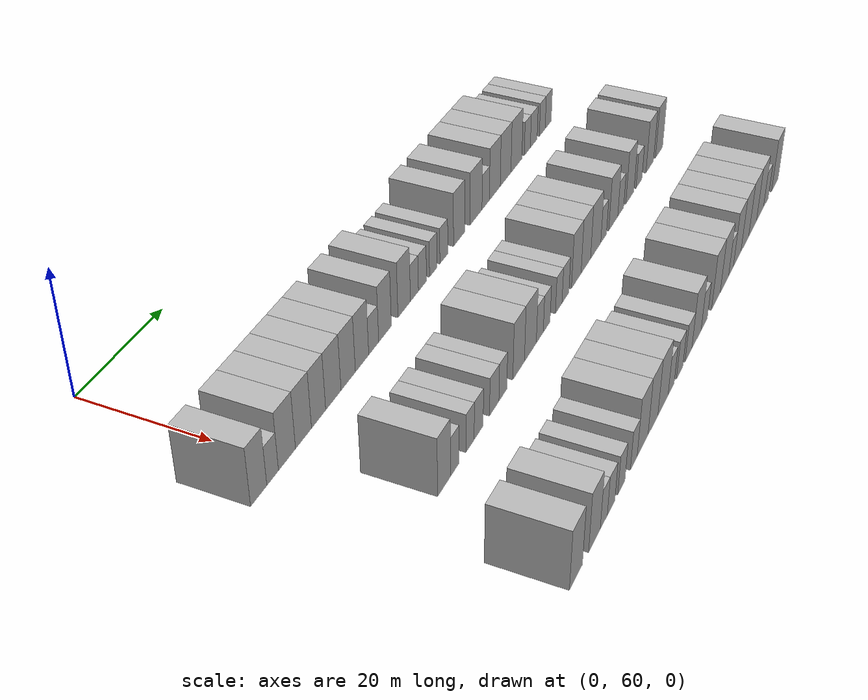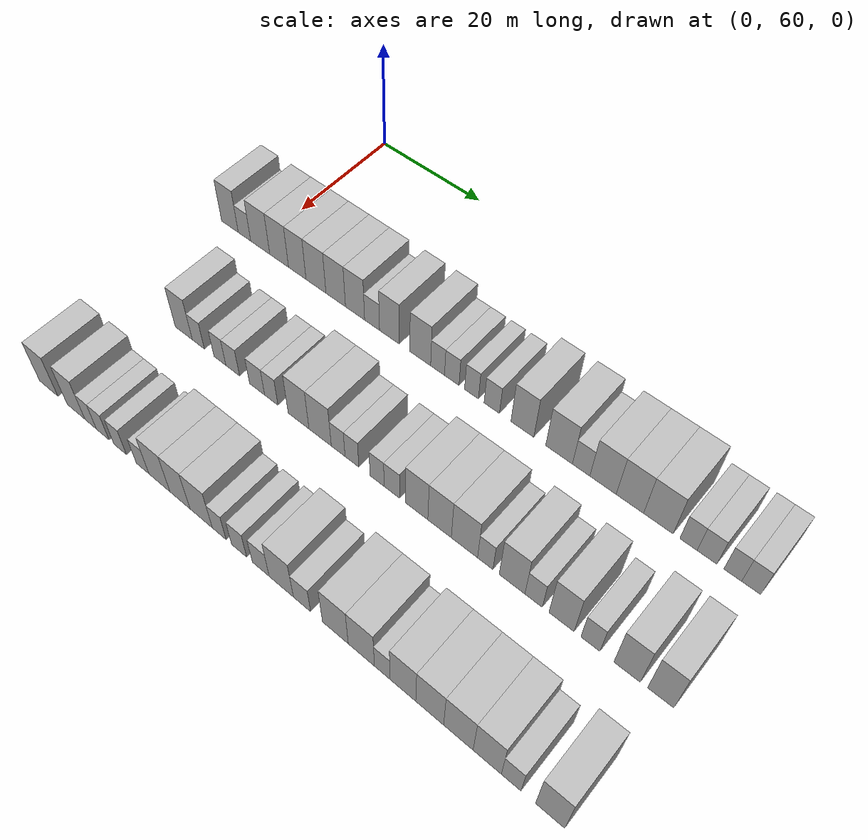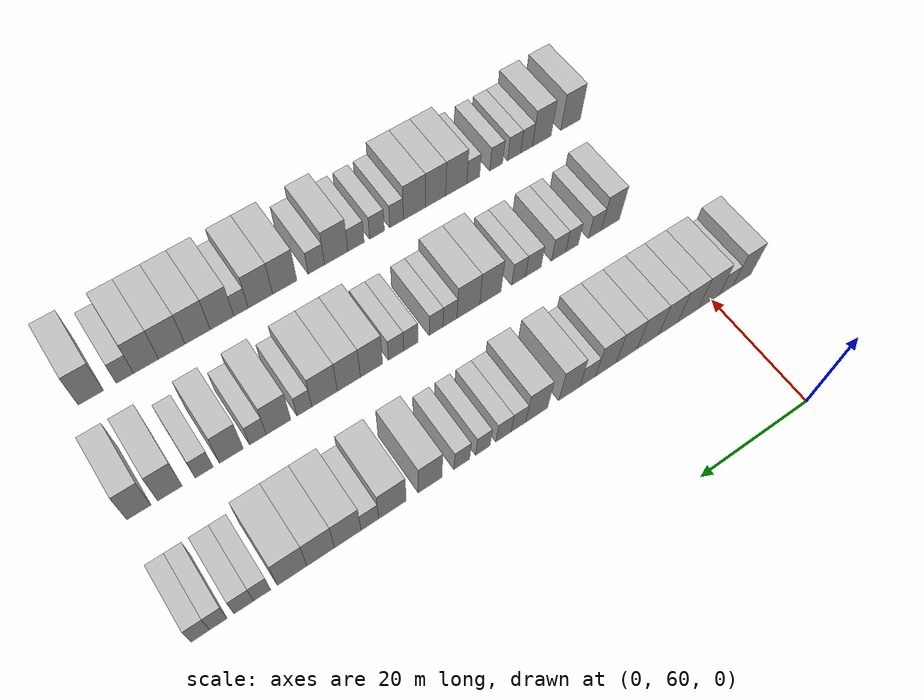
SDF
<sdf version="1.6">
 <world name="default">
  <model name="building_72">
   <static>1</static>
   <pose>25.0000 54.0609 0 0.000000 0.000000 0.000000</pose>
   <link name="link">
    <pose>0 0 4.50 0 0 0</pose>
    <collision name="collision"><geometry><box><size>10.0000 3.7414 9.0000</size></box></geometry></collision>
    <visual name="visual">
     <cast_shadows>0</cast_shadows>
     <geometry><box><size>10.0000 3.7414 9.0000</size></box></geometry>
     <material>
      <script>
       <uri>model://HANNAS_wall/materials/scripts</uri>
       <uri>model://HANNAS_wall/materials/textures</uri>
       <name>vrc/HANNAS_wall</name>
      </script>
     </material>
    </visual>
   </link>
  </model>
  <model name="building_73">
   <static>1</static>
   <pose>25.0000 57.3106 0 0.000000 0.000000 0.000000</pose>
   <link name="link">
    <pose>0 0 3.00 0 0 0</pose>
    <collision name="collision"><geometry><box><size>10.0000 2.7582 6.0000</size></box></geometry></collision>
    <visual name="visual">
     <cast_shadows>0</cast_shadows>
     <geometry><box><size>10.0000 2.7582 6.0000</size></box></geometry>
     <material>
      <script>
       <uri>model://HANNAS_wall/materials/scripts</uri>
       <uri>model://HANNAS_wall/materials/textures</uri>
       <name>vrc/HANNAS_wall</name>
      </script>
     </material>
    </visual>
   </link>
  </model>
  <model name="building_74">
   <static>1</static>
   <pose>25.0000 60.7613 0 0.000000 0.000000 0.000000</pose>
   <link name="link">
    <pose>0 0 4.50 0 0 0</pose>
    <collision name="collision"><geometry><box><size>10.0000 4.1431 9.0000</size></box></geometry></collision>
    <visual name="visual">
     <cast_shadows>0</cast_shadows>
     <geometry><box><size>10.0000 4.1431 9.0000</size></box></geometry>
     <material>
      <script>
       <uri>model://HANNAS_wall/materials/scripts</uri>
       <uri>model://HANNAS_wall/materials/textures</uri>
       <name>vrc/HANNAS_wall</name>
      </script>
     </material>
    </visual>
   </link>
  </model>
  <model name="building_75">
   <static>1</static>
   <pose>25.0000 64.8442 0 0.000000 0.000000 0.000000</pose>
   <link name="link">
    <pose>0 0 4.50 0 0 0</pose>
    <collision name="collision"><geometry><box><size>10.0000 4.0227 9.0000</size></box></geometry></collision>
    <visual name="visual">
     <cast_shadows>0</cast_shadows>
     <geometry><box><size>10.0000 4.0227 9.0000</size></box></geometry>
     <material>
      <script>
       <uri>model://HANNAS_wall/materials/scripts</uri>
       <uri>model://HANNAS_wall/materials/textures</uri>
       <name>vrc/HANNAS_wall</name>
      </script>
     </material>
    </visual>
   </link>
  </model>
  <model name="building_76">
   <static>1</static>
   <pose>25.0000 68.6982 0 0.000000 0.000000 0.000000</pose>
   <link name="link">
    <pose>0 0 4.50 0 0 0</pose>
    <collision name="collision"><geometry><box><size>10.0000 3.6854 9.0000</size></box></geometry></collision>
    <visual name="visual">
     <cast_shadows>0</cast_shadows>
     <geometry><box><size>10.0000 3.6854 9.0000</size></box></geometry>
     <material>
      <script>
       <uri>model://HANNAS_wall/materials/scripts</uri>
       <uri>model://HANNAS_wall/materials/textures</uri>
       <name>vrc/HANNAS_wall</name>
      </script>
     </material>
    </visual>
   </link>
  </model>
  <model name="building_77">
   <static>1</static>
   <pose>25.0000 72.5969 0 0.000000 0.000000 0.000000</pose>
   <link name="link">
    <pose>0 0 4.50 0 0 0</pose>
    <collision name="collision"><geometry><box><size>10.0000 4.1120 9.0000</size></box></geometry></collision>
    <visual name="visual">
     <cast_shadows>0</cast_shadows>
     <geometry><box><size>10.0000 4.1120 9.0000</size></box></geometry>
     <material>
      <script>
       <uri>model://HANNAS_wall/materials/scripts</uri>
       <uri>model://HANNAS_wall/materials/textures</uri>
       <name>vrc/HANNAS_wall</name>
      </script>
     </material>
    </visual>
   </link>
  </model>
  <model name="building_78">
   <static>1</static>
   <pose>25.0000 76.6334 0 0.000000 0.000000 0.000000</pose>
   <link name="link">
    <pose>0 0 4.50 0 0 0</pose>
    <collision name="collision"><geometry><box><size>10.0000 3.9609 9.0000</size></box></geometry></collision>
    <visual name="visual">
     <cast_shadows>0</cast_shadows>
     <geometry><box><size>10.0000 3.9609 9.0000</size></box></geometry>
     <material>
      <script>
       <uri>model://HANNAS_wall/materials/scripts</uri>
       <uri>model://HANNAS_wall/materials/textures</uri>
       <name>vrc/HANNAS_wall</name>
      </script>
     </material>
    </visual>
   </link>
  </model>
  <model name="building_79">
   <static>1</static>
   <pose>25.0000 80.5149 0 0.000000 0.000000 0.000000</pose>
   <link name="link">
    <pose>0 0 4.50 0 0 0</pose>
    <collision name="collision"><geometry><box><size>10.0000 3.8021 9.0000</size></box></geometry></collision>
    <visual name="visual">
     <cast_shadows>0</cast_shadows>
     <geometry><box><size>10.0000 3.8021 9.0000</size></box></geometry>
     <material>
      <script>
       <uri>model://HANNAS_wall/materials/scripts</uri>
       <uri>model://HANNAS_wall/materials/textures</uri>
       <name>vrc/HANNAS_wall</name>
      </script>
     </material>
    </visual>
   </link>
  </model>
  <model name="building_80">
   <static>1</static>
   <pose>25.0000 83.8756 0 0.000000 0.000000 0.000000</pose>
   <link name="link">
    <pose>0 0 3.00 0 0 0</pose>
    <collision name="collision"><geometry><box><size>10.0000 2.9192 6.0000</size></box></geometry></collision>
    <visual name="visual">
     <cast_shadows>0</cast_shadows>
     <geometry><box><size>10.0000 2.9192 6.0000</size></box></geometry>
     <material>
      <script>
       <uri>model://HANNAS_wall/materials/scripts</uri>
       <uri>model://HANNAS_wall/materials/textures</uri>
       <name>vrc/HANNAS_wall</name>
      </script>
     </material>
    </visual>
   </link>
  </model>
  <model name="building_81">
   <static>1</static>
   <pose>25.0000 87.2364 0 0.000000 0.000000 0.000000</pose>
   <link name="link">
    <pose>0 0 4.50 0 0 0</pose>
    <collision name="collision"><geometry><box><size>10.0000 3.8025 9.0000</size></box></geometry></collision>
    <visual name="visual">
     <cast_shadows>0</cast_shadows>
     <geometry><box><size>10.0000 3.8025 9.0000</size></box></geometry>
     <material>
      <script>
       <uri>model://HANNAS_wall/materials/scripts</uri>
       <uri>model://HANNAS_wall/materials/textures</uri>
       <name>vrc/HANNAS_wall</name>
      </script>
     </material>
    </visual>
   </link>
  </model>
  <model name="building_82">
   <static>1</static>
   <pose>25.0000 93.0876 0 0.000000 0.000000 0.000000</pose>
   <link name="link">
    <pose>0 0 4.50 0 0 0</pose>
    <collision name="collision"><geometry><box><size>10.0000 3.8999 9.0000</size></box></geometry></collision>
    <visual name="visual">
     <cast_shadows>0</cast_shadows>
     <geometry><box><size>10.0000 3.8999 9.0000</size></box></geometry>
     <material>
      <script>
       <uri>model://HANNAS_wall/materials/scripts</uri>
       <uri>model://HANNAS_wall/materials/textures</uri>
       <name>vrc/HANNAS_wall</name>
      </script>
     </material>
    </visual>
   </link>
  </model>
  <model name="building_83">
   <static>1</static>
   <pose>25.0000 96.3146 0 0.000000 0.000000 0.000000</pose>
   <link name="link">
    <pose>0 0 3.00 0 0 0</pose>
    <collision name="collision"><geometry><box><size>10.0000 2.5539 6.0000</size></box></geometry></collision>
    <visual name="visual">
     <cast_shadows>0</cast_shadows>
     <geometry><box><size>10.0000 2.5539 6.0000</size></box></geometry>
     <material>
      <script>
       <uri>model://HANNAS_wall/materials/scripts</uri>
       <uri>model://HANNAS_wall/materials/textures</uri>
       <name>vrc/HANNAS_wall</name>
      </script>
     </material>
    </visual>
   </link>
  </model>
  <model name="building_84">
   <static>1</static>
   <pose>25.0000 98.9100 0 0.000000 0.000000 0.000000</pose>
   <link name="link">
    <pose>0 0 3.00 0 0 0</pose>
    <collision name="collision"><geometry><box><size>10.0000 2.6369 6.0000</size></box></geometry></collision>
    <visual name="visual">
     <cast_shadows>0</cast_shadows>
     <geometry><box><size>10.0000 2.6369 6.0000</size></box></geometry>
     <material>
      <script>
       <uri>model://HANNAS_wall/materials/scripts</uri>
       <uri>model://HANNAS_wall/materials/textures</uri>
       <name>vrc/HANNAS_wall</name>
      </script>
     </material>
    </visual>
   </link>
  </model>
  <model name="building_85">
   <static>1</static>
   <pose>25.0000 102.4667 0 0.000000 0.000000 0.000000</pose>
   <link name="link">
    <pose>0 0 3.00 0 0 0</pose>
    <collision name="collision"><geometry><box><size>10.0000 2.4763 6.0000</size></box></geometry></collision>
    <visual name="visual">
     <cast_shadows>0</cast_shadows>
     <geometry><box><size>10.0000 2.4763 6.0000</size></box></geometry>
     <material>
      <script>
       <uri>model://HANNAS_wall/materials/scripts</uri>
       <uri>model://HANNAS_wall/materials/textures</uri>
       <name>vrc/HANNAS_wall</name>
      </script>
     </material>
    </visual>
   </link>
  </model>
  <model name="building_86">
   <static>1</static>
   <pose>25.0000 106.0532 0 0.000000 0.000000 0.000000</pose>
   <link name="link">
    <pose>0 0 3.00 0 0 0</pose>
    <collision name="collision"><geometry><box><size>10.0000 2.6967 6.0000</size></box></geometry></collision>
    <visual name="visual">
     <cast_shadows>0</cast_shadows>
     <geometry><box><size>10.0000 2.6967 6.0000</size></box></geometry>
     <material>
      <script>
       <uri>model://HANNAS_wall/materials/scripts</uri>
       <uri>model://HANNAS_wall/materials/textures</uri>
       <name>vrc/HANNAS_wall</name>
      </script>
     </material>
    </visual>
   </link>
  </model>
  <model name="building_87">
   <static>1</static>
   <pose>25.0000 111.3557 0 0.000000 0.000000 0.000000</pose>
   <link name="link">
    <pose>0 0 4.50 0 0 0</pose>
    <collision name="collision"><geometry><box><size>10.0000 3.9084 9.0000</size></box></geometry></collision>
    <visual name="visual">
     <cast_shadows>0</cast_shadows>
     <geometry><box><size>10.0000 3.9084 9.0000</size></box></geometry>
     <material>
      <script>
       <uri>model://HANNAS_wall/materials/scripts</uri>
       <uri>model://HANNAS_wall/materials/textures</uri>
       <name>vrc/HANNAS_wall</name>
      </script>
     </material>
    </visual>
   </link>
  </model>
  <model name="building_88">
   <static>1</static>
   <pose>25.0000 117.5248 0 0.000000 0.000000 0.000000</pose>
   <link name="link">
    <pose>0 0 4.50 0 0 0</pose>
    <collision name="collision"><geometry><box><size>10.0000 4.4297 9.0000</size></box></geometry></collision>
    <visual name="visual">
     <cast_shadows>0</cast_shadows>
     <geometry><box><size>10.0000 4.4297 9.0000</size></box></geometry>
     <material>
      <script>
       <uri>model://HANNAS_wall/materials/scripts</uri>
       <uri>model://HANNAS_wall/materials/textures</uri>
       <name>vrc/HANNAS_wall</name>
      </script>
     </material>
    </visual>
   </link>
  </model>
  <model name="building_89">
   <static>1</static>
   <pose>25.0000 121.1497 0 0.000000 0.000000 0.000000</pose>
   <link name="link">
    <pose>0 0 3.00 0 0 0</pose>
    <collision name="collision"><geometry><box><size>10.0000 2.8201 6.0000</size></box></geometry></collision>
    <visual name="visual">
     <cast_shadows>0</cast_shadows>
     <geometry><box><size>10.0000 2.8201 6.0000</size></box></geometry>
     <material>
      <script>
       <uri>model://HANNAS_wall/materials/scripts</uri>
       <uri>model://HANNAS_wall/materials/textures</uri>
       <name>vrc/HANNAS_wall</name>
      </script>
     </material>
    </visual>
   </link>
  </model>
  <model name="building_90">
   <static>1</static>
   <pose>25.0000 124.6614 0 0.000000 0.000000 0.000000</pose>
   <link name="link">
    <pose>0 0 4.50 0 0 0</pose>
    <collision name="collision"><geometry><box><size>10.0000 4.2033 9.0000</size></box></geometry></collision>
    <visual name="visual">
     <cast_shadows>0</cast_shadows>
     <geometry><box><size>10.0000 4.2033 9.0000</size></box></geometry>
     <material>
      <script>
       <uri>model://HANNAS_wall/materials/scripts</uri>
       <uri>model://HANNAS_wall/materials/textures</uri>
       <name>vrc/HANNAS_wall</name>
      </script>
     </material>
    </visual>
   </link>
  </model>
  <model name="building_91">
   <static>1</static>
   <pose>25.0000 128.8981 0 0.000000 0.000000 0.000000</pose>
   <link name="link">
    <pose>0 0 4.50 0 0 0</pose>
    <collision name="collision"><geometry><box><size>10.0000 4.2702 9.0000</size></box></geometry></collision>
    <visual name="visual">
     <cast_shadows>0</cast_shadows>
     <geometry><box><size>10.0000 4.2702 9.0000</size></box></geometry>
     <material>
      <script>
       <uri>model://HANNAS_wall/materials/scripts</uri>
       <uri>model://HANNAS_wall/materials/textures</uri>
       <name>vrc/HANNAS_wall</name>
      </script>
     </material>
    </visual>
   </link>
  </model>
  <model name="building_92">
   <static>1</static>
   <pose>25.0000 133.2828 0 0.000000 0.000000 0.000000</pose>
   <link name="link">
    <pose>0 0 4.50 0 0 0</pose>
    <collision name="collision"><geometry><box><size>10.0000 4.4991 9.0000</size></box></geometry></collision>
    <visual name="visual">
     <cast_shadows>0</cast_shadows>
     <geometry><box><size>10.0000 4.4991 9.0000</size></box></geometry>
     <material>
      <script>
       <uri>model://HANNAS_wall/materials/scripts</uri>
       <uri>model://HANNAS_wall/materials/textures</uri>
       <name>vrc/HANNAS_wall</name>
      </script>
     </material>
    </visual>
   </link>
  </model>
  <model name="building_93">
   <static>1</static>
   <pose>25.0000 137.8126 0 0.000000 0.000000 0.000000</pose>
   <link name="link">
    <pose>0 0 3.00 0 0 0</pose>
    <collision name="collision"><geometry><box><size>10.0000 2.5606 6.0000</size></box></geometry></collision>
    <visual name="visual">
     <cast_shadows>0</cast_shadows>
     <geometry><box><size>10.0000 2.5606 6.0000</size></box></geometry>
     <material>
      <script>
       <uri>model://HANNAS_wall/materials/scripts</uri>
       <uri>model://HANNAS_wall/materials/textures</uri>
       <name>vrc/HANNAS_wall</name>
      </script>
     </material>
    </visual>
   </link>
  </model>
  <model name="building_94">
   <static>1</static>
   <pose>25.0000 140.5441 0 0.000000 0.000000 0.000000</pose>
   <link name="link">
    <pose>0 0 3.00 0 0 0</pose>
    <collision name="collision"><geometry><box><size>10.0000 2.9024 6.0000</size></box></geometry></collision>
    <visual name="visual">
     <cast_shadows>0</cast_shadows>
     <geometry><box><size>10.0000 2.9024 6.0000</size></box></geometry>
     <material>
      <script>
       <uri>model://HANNAS_wall/materials/scripts</uri>
       <uri>model://HANNAS_wall/materials/textures</uri>
       <name>vrc/HANNAS_wall</name>
      </script>
     </material>
    </visual>
   </link>
  </model>
  <model name="building_95">
   <static>1</static>
   <pose>25.0000 144.2689 0 0.000000 0.000000 0.000000</pose>
   <link name="link">
    <pose>0 0 3.00 0 0 0</pose>
    <collision name="collision"><geometry><box><size>10.0000 2.5472 6.0000</size></box></geometry></collision>
    <visual name="visual">
     <cast_shadows>0</cast_shadows>
     <geometry><box><size>10.0000 2.5472 6.0000</size></box></geometry>
     <material>
      <script>
       <uri>model://HANNAS_wall/materials/scripts</uri>
       <uri>model://HANNAS_wall/materials/textures</uri>
       <name>vrc/HANNAS_wall</name>
      </script>
     </material>
    </visual>
   </link>
  </model>
  <model name="building_96">
   <static>1</static>
   <pose>25.0000 146.8952 0 0.000000 0.000000 0.000000</pose>
   <link name="link">
    <pose>0 0 3.00 0 0 0</pose>
    <collision name="collision"><geometry><box><size>10.0000 2.7054 6.0000</size></box></geometry></collision>
    <visual name="visual">
     <cast_shadows>0</cast_shadows>
     <geometry><box><size>10.0000 2.7054 6.0000</size></box></geometry>
     <material>
      <script>
       <uri>model://HANNAS_wall/materials/scripts</uri>
       <uri>model://HANNAS_wall/materials/textures</uri>
       <name>vrc/HANNAS_wall</name>
      </script>
     </material>
    </visual>
   </link>
  </model>
  <model name="building_179">
   <static>1</static>
   <pose>44.0000 64.1778 0 0.000000 0.000000 0.000000</pose>
   <link name="link">
    <pose>0 0 4.50 0 0 0</pose>
    <collision name="collision"><geometry><box><size>10.0000 3.6360 9.0000</size></box></geometry></collision>
    <visual name="visual">
     <cast_shadows>0</cast_shadows>
     <geometry><box><size>10.0000 3.6360 9.0000</size></box></geometry>
     <material>
      <script>
       <uri>model://HANNAS_wall/materials/scripts</uri>
       <uri>model://HANNAS_wall/materials/textures</uri>
       <name>vrc/HANNAS_wall</name>
      </script>
     </material>
    </visual>
   </link>
  </model>
  <model name="building_180">
   <static>1</static>
   <pose>44.0000 67.2681 0 0.000000 0.000000 0.000000</pose>
   <link name="link">
    <pose>0 0 3.00 0 0 0</pose>
    <collision name="collision"><geometry><box><size>10.0000 2.5446 6.0000</size></box></geometry></collision>
    <visual name="visual">
     <cast_shadows>0</cast_shadows>
     <geometry><box><size>10.0000 2.5446 6.0000</size></box></geometry>
     <material>
      <script>
       <uri>model://HANNAS_wall/materials/scripts</uri>
       <uri>model://HANNAS_wall/materials/textures</uri>
       <name>vrc/HANNAS_wall</name>
      </script>
     </material>
    </visual>
   </link>
  </model>
  <model name="building_181">
   <static>1</static>
   <pose>44.0000 71.7629 0 0.000000 0.000000 0.000000</pose>
   <link name="link">
    <pose>0 0 3.00 0 0 0</pose>
    <collision name="collision"><geometry><box><size>10.0000 2.4450 6.0000</size></box></geometry></collision>
    <visual name="visual">
     <cast_shadows>0</cast_shadows>
     <geometry><box><size>10.0000 2.4450 6.0000</size></box></geometry>
     <material>
      <script>
       <uri>model://HANNAS_wall/materials/scripts</uri>
       <uri>model://HANNAS_wall/materials/textures</uri>
       <name>vrc/HANNAS_wall</name>
      </script>
     </material>
    </visual>
   </link>
  </model>
  <model name="building_182">
   <static>1</static>
   <pose>44.0000 74.3741 0 0.000000 0.000000 0.000000</pose>
   <link name="link">
    <pose>0 0 3.00 0 0 0</pose>
    <collision name="collision"><geometry><box><size>10.0000 2.7774 6.0000</size></box></geometry></collision>
    <visual name="visual">
     <cast_shadows>0</cast_shadows>
     <geometry><box><size>10.0000 2.7774 6.0000</size></box></geometry>
     <material>
      <script>
       <uri>model://HANNAS_wall/materials/scripts</uri>
       <uri>model://HANNAS_wall/materials/textures</uri>
       <name>vrc/HANNAS_wall</name>
      </script>
     </material>
    </visual>
   </link>
  </model>
  <model name="building_183">
   <static>1</static>
   <pose>44.0000 79.2626 0 0.000000 0.000000 0.000000</pose>
   <link name="link">
    <pose>0 0 3.00 0 0 0</pose>
    <collision name="collision"><geometry><box><size>10.0000 2.9997 6.0000</size></box></geometry></collision>
    <visual name="visual">
     <cast_shadows>0</cast_shadows>
     <geometry><box><size>10.0000 2.9997 6.0000</size></box></geometry>
     <material>
      <script>
       <uri>model://HANNAS_wall/materials/scripts</uri>
       <uri>model://HANNAS_wall/materials/textures</uri>
       <name>vrc/HANNAS_wall</name>
      </script>
     </material>
    </visual>
   </link>
  </model>
  <model name="building_184">
   <static>1</static>
   <pose>44.0000 82.0551 0 0.000000 0.000000 0.000000</pose>
   <link name="link">
    <pose>0 0 3.00 0 0 0</pose>
    <collision name="collision"><geometry><box><size>10.0000 2.5851 6.0000</size></box></geometry></collision>
    <visual name="visual">
     <cast_shadows>0</cast_shadows>
     <geometry><box><size>10.0000 2.5851 6.0000</size></box></geometry>
     <material>
      <script>
       <uri>model://HANNAS_wall/materials/scripts</uri>
       <uri>model://HANNAS_wall/materials/textures</uri>
       <name>vrc/HANNAS_wall</name>
      </script>
     </material>
    </visual>
   </link>
  </model>
  <model name="building_185">
   <static>1</static>
   <pose>44.0000 87.3231 0 0.000000 0.000000 0.000000</pose>
   <link name="link">
    <pose>0 0 4.50 0 0 0</pose>
    <collision name="collision"><geometry><box><size>10.0000 3.9509 9.0000</size></box></geometry></collision>
    <visual name="visual">
     <cast_shadows>0</cast_shadows>
     <geometry><box><size>10.0000 3.9509 9.0000</size></box></geometry>
     <material>
      <script>
       <uri>model://HANNAS_wall/materials/scripts</uri>
       <uri>model://HANNAS_wall/materials/textures</uri>
       <name>vrc/HANNAS_wall</name>
      </script>
     </material>
    </visual>
   </link>
  </model>
  <model name="building_186">
   <static>1</static>
   <pose>44.0000 91.3824 0 0.000000 0.000000 0.000000</pose>
   <link name="link">
    <pose>0 0 4.50 0 0 0</pose>
    <collision name="collision"><geometry><box><size>10.0000 4.1678 9.0000</size></box></geometry></collision>
    <visual name="visual">
     <cast_shadows>0</cast_shadows>
     <geometry><box><size>10.0000 4.1678 9.0000</size></box></geometry>
     <material>
      <script>
       <uri>model://HANNAS_wall/materials/scripts</uri>
       <uri>model://HANNAS_wall/materials/textures</uri>
       <name>vrc/HANNAS_wall</name>
      </script>
     </material>
    </visual>
   </link>
  </model>
  <model name="building_187">
   <static>1</static>
   <pose>44.0000 94.7273 0 0.000000 0.000000 0.000000</pose>
   <link name="link">
    <pose>0 0 3.00 0 0 0</pose>
    <collision name="collision"><geometry><box><size>10.0000 2.5219 6.0000</size></box></geometry></collision>
    <visual name="visual">
     <cast_shadows>0</cast_shadows>
     <geometry><box><size>10.0000 2.5219 6.0000</size></box></geometry>
     <material>
      <script>
       <uri>model://HANNAS_wall/materials/scripts</uri>
       <uri>model://HANNAS_wall/materials/textures</uri>
       <name>vrc/HANNAS_wall</name>
      </script>
     </material>
    </visual>
   </link>
  </model>
  <model name="building_188">
   <static>1</static>
   <pose>44.0000 97.2341 0 0.000000 0.000000 0.000000</pose>
   <link name="link">
    <pose>0 0 3.00 0 0 0</pose>
    <collision name="collision"><geometry><box><size>10.0000 2.4917 6.0000</size></box></geometry></collision>
    <visual name="visual">
     <cast_shadows>0</cast_shadows>
     <geometry><box><size>10.0000 2.4917 6.0000</size></box></geometry>
     <material>
      <script>
       <uri>model://HANNAS_wall/materials/scripts</uri>
       <uri>model://HANNAS_wall/materials/textures</uri>
       <name>vrc/HANNAS_wall</name>
      </script>
     </material>
    </visual>
   </link>
  </model>
  <model name="building_189">
   <static>1</static>
   <pose>44.0000 101.7256 0 0.000000 0.000000 0.000000</pose>
   <link name="link">
    <pose>0 0 3.00 0 0 0</pose>
    <collision name="collision"><geometry><box><size>10.0000 2.4915 6.0000</size></box></geometry></collision>
    <visual name="visual">
     <cast_shadows>0</cast_shadows>
     <geometry><box><size>10.0000 2.4915 6.0000</size></box></geometry>
     <material>
      <script>
       <uri>model://HANNAS_wall/materials/scripts</uri>
       <uri>model://HANNAS_wall/materials/textures</uri>
       <name>vrc/HANNAS_wall</name>
      </script>
     </material>
    </visual>
   </link>
  </model>
  <model name="building_190">
   <static>1</static>
   <pose>44.0000 104.3107 0 0.000000 0.000000 0.000000</pose>
   <link name="link">
    <pose>0 0 3.00 0 0 0</pose>
    <collision name="collision"><geometry><box><size>10.0000 2.6787 6.0000</size></box></geometry></collision>
    <visual name="visual">
     <cast_shadows>0</cast_shadows>
     <geometry><box><size>10.0000 2.6787 6.0000</size></box></geometry>
     <material>
      <script>
       <uri>model://HANNAS_wall/materials/scripts</uri>
       <uri>model://HANNAS_wall/materials/textures</uri>
       <name>vrc/HANNAS_wall</name>
      </script>
     </material>
    </visual>
   </link>
  </model>
  <model name="building_191">
   <static>1</static>
   <pose>44.0000 108.5628 0 0.000000 0.000000 0.000000</pose>
   <link name="link">
    <pose>0 0 4.50 0 0 0</pose>
    <collision name="collision"><geometry><box><size>10.0000 3.8254 9.0000</size></box></geometry></collision>
    <visual name="visual">
     <cast_shadows>0</cast_shadows>
     <geometry><box><size>10.0000 3.8254 9.0000</size></box></geometry>
     <material>
      <script>
       <uri>model://HANNAS_wall/materials/scripts</uri>
       <uri>model://HANNAS_wall/materials/textures</uri>
       <name>vrc/HANNAS_wall</name>
      </script>
     </material>
    </visual>
   </link>
  </model>
  <model name="building_192">
   <static>1</static>
   <pose>44.0000 112.4299 0 0.000000 0.000000 0.000000</pose>
   <link name="link">
    <pose>0 0 4.50 0 0 0</pose>
    <collision name="collision"><geometry><box><size>10.0000 3.9089 9.0000</size></box></geometry></collision>
    <visual name="visual">
     <cast_shadows>0</cast_shadows>
     <geometry><box><size>10.0000 3.9089 9.0000</size></box></geometry>
     <material>
      <script>
       <uri>model://HANNAS_wall/materials/scripts</uri>
       <uri>model://HANNAS_wall/materials/textures</uri>
       <name>vrc/HANNAS_wall</name>
      </script>
     </material>
    </visual>
   </link>
  </model>
  <model name="building_193">
   <static>1</static>
   <pose>44.0000 116.5301 0 0.000000 0.000000 0.000000</pose>
   <link name="link">
    <pose>0 0 4.50 0 0 0</pose>
    <collision name="collision"><geometry><box><size>10.0000 4.2916 9.0000</size></box></geometry></collision>
    <visual name="visual">
     <cast_shadows>0</cast_shadows>
     <geometry><box><size>10.0000 4.2916 9.0000</size></box></geometry>
     <material>
      <script>
       <uri>model://HANNAS_wall/materials/scripts</uri>
       <uri>model://HANNAS_wall/materials/textures</uri>
       <name>vrc/HANNAS_wall</name>
      </script>
     </material>
    </visual>
   </link>
  </model>
  <model name="building_194">
   <static>1</static>
   <pose>44.0000 119.9042 0 0.000000 0.000000 0.000000</pose>
   <link name="link">
    <pose>0 0 3.00 0 0 0</pose>
    <collision name="collision"><geometry><box><size>10.0000 2.4565 6.0000</size></box></geometry></collision>
    <visual name="visual">
     <cast_shadows>0</cast_shadows>
     <geometry><box><size>10.0000 2.4565 6.0000</size></box></geometry>
     <material>
      <script>
       <uri>model://HANNAS_wall/materials/scripts</uri>
       <uri>model://HANNAS_wall/materials/textures</uri>
       <name>vrc/HANNAS_wall</name>
      </script>
     </material>
    </visual>
   </link>
  </model>
  <model name="building_195">
   <static>1</static>
   <pose>44.0000 124.1376 0 0.000000 0.000000 0.000000</pose>
   <link name="link">
    <pose>0 0 4.50 0 0 0</pose>
    <collision name="collision"><geometry><box><size>10.0000 4.0102 9.0000</size></box></geometry></collision>
    <visual name="visual">
     <cast_shadows>0</cast_shadows>
     <geometry><box><size>10.0000 4.0102 9.0000</size></box></geometry>
     <material>
      <script>
       <uri>model://HANNAS_wall/materials/scripts</uri>
       <uri>model://HANNAS_wall/materials/textures</uri>
       <name>vrc/HANNAS_wall</name>
      </script>
     </material>
    </visual>
   </link>
  </model>
  <model name="building_196">
   <static>1</static>
   <pose>44.0000 127.4813 0 0.000000 0.000000 0.000000</pose>
   <link name="link">
    <pose>0 0 3.00 0 0 0</pose>
    <collision name="collision"><geometry><box><size>10.0000 2.6772 6.0000</size></box></geometry></collision>
    <visual name="visual">
     <cast_shadows>0</cast_shadows>
     <geometry><box><size>10.0000 2.6772 6.0000</size></box></geometry>
     <material>
      <script>
       <uri>model://HANNAS_wall/materials/scripts</uri>
       <uri>model://HANNAS_wall/materials/textures</uri>
       <name>vrc/HANNAS_wall</name>
      </script>
     </material>
    </visual>
   </link>
  </model>
  <model name="building_197">
   <static>1</static>
   <pose>44.0000 131.7065 0 0.000000 0.000000 0.000000</pose>
   <link name="link">
    <pose>0 0 4.50 0 0 0</pose>
    <collision name="collision"><geometry><box><size>10.0000 3.7732 9.0000</size></box></geometry></collision>
    <visual name="visual">
     <cast_shadows>0</cast_shadows>
     <geometry><box><size>10.0000 3.7732 9.0000</size></box></geometry>
     <material>
      <script>
       <uri>model://HANNAS_wall/materials/scripts</uri>
       <uri>model://HANNAS_wall/materials/textures</uri>
       <name>vrc/HANNAS_wall</name>
      </script>
     </material>
    </visual>
   </link>
  </model>
  <model name="building_198">
   <static>1</static>
   <pose>44.0000 135.9897 0 0.000000 0.000000 0.000000</pose>
   <link name="link">
    <pose>0 0 3.00 0 0 0</pose>
    <collision name="collision"><geometry><box><size>10.0000 2.7932 6.0000</size></box></geometry></collision>
    <visual name="visual">
     <cast_shadows>0</cast_shadows>
     <geometry><box><size>10.0000 2.7932 6.0000</size></box></geometry>
     <material>
      <script>
       <uri>model://HANNAS_wall/materials/scripts</uri>
       <uri>model://HANNAS_wall/materials/textures</uri>
       <name>vrc/HANNAS_wall</name>
      </script>
     </material>
    </visual>
   </link>
  </model>
  <model name="building_199">
   <static>1</static>
   <pose>44.0000 141.2623 0 0.000000 0.000000 0.000000</pose>
   <link name="link">
    <pose>0 0 4.50 0 0 0</pose>
    <collision name="collision"><geometry><box><size>10.0000 3.7520 9.0000</size></box></geometry></collision>
    <visual name="visual">
     <cast_shadows>0</cast_shadows>
     <geometry><box><size>10.0000 3.7520 9.0000</size></box></geometry>
     <material>
      <script>
       <uri>model://HANNAS_wall/materials/scripts</uri>
       <uri>model://HANNAS_wall/materials/textures</uri>
       <name>vrc/HANNAS_wall</name>
      </script>
     </material>
    </visual>
   </link>
  </model>
  <model name="building_200">
   <static>1</static>
   <pose>44.0000 145.9519 0 0.000000 0.000000 0.000000</pose>
   <link name="link">
    <pose>0 0 4.50 0 0 0</pose>
    <collision name="collision"><geometry><box><size>10.0000 3.6272 9.0000</size></box></geometry></collision>
    <visual name="visual">
     <cast_shadows>0</cast_shadows>
     <geometry><box><size>10.0000 3.6272 9.0000</size></box></geometry>
     <material>
      <script>
       <uri>model://HANNAS_wall/materials/scripts</uri>
       <uri>model://HANNAS_wall/materials/textures</uri>
       <name>vrc/HANNAS_wall</name>
      </script>
     </material>
    </visual>
   </link>
  </model>
  <model name="building_302">
   <static>1</static>
   <pose>63.0000 57.0914 0 0.000000 0.000000 0.000000</pose>
   <link name="link">
    <pose>0 0 4.50 0 0 0</pose>
    <collision name="collision"><geometry><box><size>10.0000 4.0800 9.0000</size></box></geometry></collision>
    <visual name="visual">
     <cast_shadows>0</cast_shadows>
     <geometry><box><size>10.0000 4.0800 9.0000</size></box></geometry>
     <material>
      <script>
       <uri>model://HANNAS_wall/materials/scripts</uri>
       <uri>model://HANNAS_wall/materials/textures</uri>
       <name>vrc/HANNAS_wall</name>
      </script>
     </material>
    </visual>
   </link>
  </model>
  <model name="building_303">
   <static>1</static>
   <pose>63.0000 63.0556 0 0.000000 0.000000 0.000000</pose>
   <link name="link">
    <pose>0 0 4.50 0 0 0</pose>
    <collision name="collision"><geometry><box><size>10.0000 3.8483 9.0000</size></box></geometry></collision>
    <visual name="visual">
     <cast_shadows>0</cast_shadows>
     <geometry><box><size>10.0000 3.8483 9.0000</size></box></geometry>
     <material>
      <script>
       <uri>model://HANNAS_wall/materials/scripts</uri>
       <uri>model://HANNAS_wall/materials/textures</uri>
       <name>vrc/HANNAS_wall</name>
      </script>
     </material>
    </visual>
   </link>
  </model>
  <model name="building_304">
   <static>1</static>
   <pose>63.0000 66.1872 0 0.000000 0.000000 0.000000</pose>
   <link name="link">
    <pose>0 0 3.00 0 0 0</pose>
    <collision name="collision"><geometry><box><size>10.0000 2.4150 6.0000</size></box></geometry></collision>
    <visual name="visual">
     <cast_shadows>0</cast_shadows>
     <geometry><box><size>10.0000 2.4150 6.0000</size></box></geometry>
     <material>
      <script>
       <uri>model://HANNAS_wall/materials/scripts</uri>
       <uri>model://HANNAS_wall/materials/textures</uri>
       <name>vrc/HANNAS_wall</name>
      </script>
     </material>
    </visual>
   </link>
  </model>
  <model name="building_305">
   <static>1</static>
   <pose>63.0000 68.7123 0 0.000000 0.000000 0.000000</pose>
   <link name="link">
    <pose>0 0 3.00 0 0 0</pose>
    <collision name="collision"><geometry><box><size>10.0000 2.6353 6.0000</size></box></geometry></collision>
    <visual name="visual">
     <cast_shadows>0</cast_shadows>
     <geometry><box><size>10.0000 2.6353 6.0000</size></box></geometry>
     <material>
      <script>
       <uri>model://HANNAS_wall/materials/scripts</uri>
       <uri>model://HANNAS_wall/materials/textures</uri>
       <name>vrc/HANNAS_wall</name>
      </script>
     </material>
    </visual>
   </link>
  </model>
  <model name="building_306">
   <static>1</static>
   <pose>63.0000 72.3109 0 0.000000 0.000000 0.000000</pose>
   <link name="link">
    <pose>0 0 3.00 0 0 0</pose>
    <collision name="collision"><geometry><box><size>10.0000 2.5618 6.0000</size></box></geometry></collision>
    <visual name="visual">
     <cast_shadows>0</cast_shadows>
     <geometry><box><size>10.0000 2.5618 6.0000</size></box></geometry>
     <material>
      <script>
       <uri>model://HANNAS_wall/materials/scripts</uri>
       <uri>model://HANNAS_wall/materials/textures</uri>
       <name>vrc/HANNAS_wall</name>
      </script>
     </material>
    </visual>
   </link>
  </model>
  <model name="building_307">
   <static>1</static>
   <pose>63.0000 76.8517 0 0.000000 0.000000 0.000000</pose>
   <link name="link">
    <pose>0 0 3.00 0 0 0</pose>
    <collision name="collision"><geometry><box><size>10.0000 2.5197 6.0000</size></box></geometry></collision>
    <visual name="visual">
     <cast_shadows>0</cast_shadows>
     <geometry><box><size>10.0000 2.5197 6.0000</size></box></geometry>
     <material>
      <script>
       <uri>model://HANNAS_wall/materials/scripts</uri>
       <uri>model://HANNAS_wall/materials/textures</uri>
       <name>vrc/HANNAS_wall</name>
      </script>
     </material>
    </visual>
   </link>
  </model>
  <model name="building_308">
   <static>1</static>
   <pose>63.0000 80.1841 0 0.000000 0.000000 0.000000</pose>
   <link name="link">
    <pose>0 0 4.50 0 0 0</pose>
    <collision name="collision"><geometry><box><size>10.0000 4.1452 9.0000</size></box></geometry></collision>
    <visual name="visual">
     <cast_shadows>0</cast_shadows>
     <geometry><box><size>10.0000 4.1452 9.0000</size></box></geometry>
     <material>
      <script>
       <uri>model://HANNAS_wall/materials/scripts</uri>
       <uri>model://HANNAS_wall/materials/textures</uri>
       <name>vrc/HANNAS_wall</name>
      </script>
     </material>
    </visual>
   </link>
  </model>
  <model name="building_309">
   <static>1</static>
   <pose>63.0000 84.1921 0 0.000000 0.000000 0.000000</pose>
   <link name="link">
    <pose>0 0 4.50 0 0 0</pose>
    <collision name="collision"><geometry><box><size>10.0000 3.8709 9.0000</size></box></geometry></collision>
    <visual name="visual">
     <cast_shadows>0</cast_shadows>
     <geometry><box><size>10.0000 3.8709 9.0000</size></box></geometry>
     <material>
      <script>
       <uri>model://HANNAS_wall/materials/scripts</uri>
       <uri>model://HANNAS_wall/materials/textures</uri>
       <name>vrc/HANNAS_wall</name>
      </script>
     </material>
    </visual>
   </link>
  </model>
  <model name="building_310">
   <static>1</static>
   <pose>63.0000 88.2224 0 0.000000 0.000000 0.000000</pose>
   <link name="link">
    <pose>0 0 4.50 0 0 0</pose>
    <collision name="collision"><geometry><box><size>10.0000 4.1896 9.0000</size></box></geometry></collision>
    <visual name="visual">
     <cast_shadows>0</cast_shadows>
     <geometry><box><size>10.0000 4.1896 9.0000</size></box></geometry>
     <material>
      <script>
       <uri>model://HANNAS_wall/materials/scripts</uri>
       <uri>model://HANNAS_wall/materials/textures</uri>
       <name>vrc/HANNAS_wall</name>
      </script>
     </material>
    </visual>
   </link>
  </model>
  <model name="building_311">
   <static>1</static>
   <pose>63.0000 91.5890 0 0.000000 0.000000 0.000000</pose>
   <link name="link">
    <pose>0 0 3.00 0 0 0</pose>
    <collision name="collision"><geometry><box><size>10.0000 2.5436 6.0000</size></box></geometry></collision>
    <visual name="visual">
     <cast_shadows>0</cast_shadows>
     <geometry><box><size>10.0000 2.5436 6.0000</size></box></geometry>
     <material>
      <script>
       <uri>model://HANNAS_wall/materials/scripts</uri>
       <uri>model://HANNAS_wall/materials/textures</uri>
       <name>vrc/HANNAS_wall</name>
      </script>
     </material>
    </visual>
   </link>
  </model>
  <model name="building_312">
   <static>1</static>
   <pose>63.0000 95.2276 0 0.000000 0.000000 0.000000</pose>
   <link name="link">
    <pose>0 0 3.00 0 0 0</pose>
    <collision name="collision"><geometry><box><size>10.0000 2.7337 6.0000</size></box></geometry></collision>
    <visual name="visual">
     <cast_shadows>0</cast_shadows>
     <geometry><box><size>10.0000 2.7337 6.0000</size></box></geometry>
     <material>
      <script>
       <uri>model://HANNAS_wall/materials/scripts</uri>
       <uri>model://HANNAS_wall/materials/textures</uri>
       <name>vrc/HANNAS_wall</name>
      </script>
     </material>
    </visual>
   </link>
  </model>
  <model name="building_313">
   <static>1</static>
   <pose>63.0000 99.0881 0 0.000000 0.000000 0.000000</pose>
   <link name="link">
    <pose>0 0 3.00 0 0 0</pose>
    <collision name="collision"><geometry><box><size>10.0000 2.9873 6.0000</size></box></geometry></collision>
    <visual name="visual">
     <cast_shadows>0</cast_shadows>
     <geometry><box><size>10.0000 2.9873 6.0000</size></box></geometry>
     <material>
      <script>
       <uri>model://HANNAS_wall/materials/scripts</uri>
       <uri>model://HANNAS_wall/materials/textures</uri>
       <name>vrc/HANNAS_wall</name>
      </script>
     </material>
    </visual>
   </link>
  </model>
  <model name="building_314">
   <static>1</static>
   <pose>63.0000 102.6879 0 0.000000 0.000000 0.000000</pose>
   <link name="link">
    <pose>0 0 4.50 0 0 0</pose>
    <collision name="collision"><geometry><box><size>10.0000 4.2122 9.0000</size></box></geometry></collision>
    <visual name="visual">
     <cast_shadows>0</cast_shadows>
     <geometry><box><size>10.0000 4.2122 9.0000</size></box></geometry>
     <material>
      <script>
       <uri>model://HANNAS_wall/materials/scripts</uri>
       <uri>model://HANNAS_wall/materials/textures</uri>
       <name>vrc/HANNAS_wall</name>
      </script>
     </material>
    </visual>
   </link>
  </model>
  <model name="building_315">
   <static>1</static>
   <pose>63.0000 106.2555 0 0.000000 0.000000 0.000000</pose>
   <link name="link">
    <pose>0 0 3.00 0 0 0</pose>
    <collision name="collision"><geometry><box><size>10.0000 2.9230 6.0000</size></box></geometry></collision>
    <visual name="visual">
     <cast_shadows>0</cast_shadows>
     <geometry><box><size>10.0000 2.9230 6.0000</size></box></geometry>
     <material>
      <script>
       <uri>model://HANNAS_wall/materials/scripts</uri>
       <uri>model://HANNAS_wall/materials/textures</uri>
       <name>vrc/HANNAS_wall</name>
      </script>
     </material>
    </visual>
   </link>
  </model>
  <model name="building_316">
   <static>1</static>
   <pose>63.0000 111.8408 0 0.000000 0.000000 0.000000</pose>
   <link name="link">
    <pose>0 0 4.50 0 0 0</pose>
    <collision name="collision"><geometry><box><size>10.0000 4.2477 9.0000</size></box></geometry></collision>
    <visual name="visual">
     <cast_shadows>0</cast_shadows>
     <geometry><box><size>10.0000 4.2477 9.0000</size></box></geometry>
     <material>
      <script>
       <uri>model://HANNAS_wall/materials/scripts</uri>
       <uri>model://HANNAS_wall/materials/textures</uri>
       <name>vrc/HANNAS_wall</name>
      </script>
     </material>
    </visual>
   </link>
  </model>
  <model name="building_317">
   <static>1</static>
   <pose>63.0000 116.0699 0 0.000000 0.000000 0.000000</pose>
   <link name="link">
    <pose>0 0 4.50 0 0 0</pose>
    <collision name="collision"><geometry><box><size>10.0000 4.2106 9.0000</size></box></geometry></collision>
    <visual name="visual">
     <cast_shadows>0</cast_shadows>
     <geometry><box><size>10.0000 4.2106 9.0000</size></box></geometry>
     <material>
      <script>
       <uri>model://HANNAS_wall/materials/scripts</uri>
       <uri>model://HANNAS_wall/materials/textures</uri>
       <name>vrc/HANNAS_wall</name>
      </script>
     </material>
    </visual>
   </link>
  </model>
  <model name="building_318">
   <static>1</static>
   <pose>63.0000 119.4020 0 0.000000 0.000000 0.000000</pose>
   <link name="link">
    <pose>0 0 3.00 0 0 0</pose>
    <collision name="collision"><geometry><box><size>10.0000 2.4536 6.0000</size></box></geometry></collision>
    <visual name="visual">
     <cast_shadows>0</cast_shadows>
     <geometry><box><size>10.0000 2.4536 6.0000</size></box></geometry>
     <material>
      <script>
       <uri>model://HANNAS_wall/materials/scripts</uri>
       <uri>model://HANNAS_wall/materials/textures</uri>
       <name>vrc/HANNAS_wall</name>
      </script>
     </material>
    </visual>
   </link>
  </model>
  <model name="building_319">
   <static>1</static>
   <pose>63.0000 122.6186 0 0.000000 0.000000 0.000000</pose>
   <link name="link">
    <pose>0 0 4.50 0 0 0</pose>
    <collision name="collision"><geometry><box><size>10.0000 3.9797 9.0000</size></box></geometry></collision>
    <visual name="visual">
     <cast_shadows>0</cast_shadows>
     <geometry><box><size>10.0000 3.9797 9.0000</size></box></geometry>
     <material>
      <script>
       <uri>model://HANNAS_wall/materials/scripts</uri>
       <uri>model://HANNAS_wall/materials/textures</uri>
       <name>vrc/HANNAS_wall</name>
      </script>
     </material>
    </visual>
   </link>
  </model>
  <model name="building_320">
   <static>1</static>
   <pose>63.0000 126.7077 0 0.000000 0.000000 0.000000</pose>
   <link name="link">
    <pose>0 0 4.50 0 0 0</pose>
    <collision name="collision"><geometry><box><size>10.0000 4.1985 9.0000</size></box></geometry></collision>
    <visual name="visual">
     <cast_shadows>0</cast_shadows>
     <geometry><box><size>10.0000 4.1985 9.0000</size></box></geometry>
     <material>
      <script>
       <uri>model://HANNAS_wall/materials/scripts</uri>
       <uri>model://HANNAS_wall/materials/textures</uri>
       <name>vrc/HANNAS_wall</name>
      </script>
     </material>
    </visual>
   </link>
  </model>
  <model name="building_321">
   <static>1</static>
   <pose>63.0000 130.9779 0 0.000000 0.000000 0.000000</pose>
   <link name="link">
    <pose>0 0 4.50 0 0 0</pose>
    <collision name="collision"><geometry><box><size>10.0000 4.3419 9.0000</size></box></geometry></collision>
    <visual name="visual">
     <cast_shadows>0</cast_shadows>
     <geometry><box><size>10.0000 4.3419 9.0000</size></box></geometry>
     <material>
      <script>
       <uri>model://HANNAS_wall/materials/scripts</uri>
       <uri>model://HANNAS_wall/materials/textures</uri>
       <name>vrc/HANNAS_wall</name>
      </script>
     </material>
    </visual>
   </link>
  </model>
  <model name="building_322">
   <static>1</static>
   <pose>63.0000 135.1686 0 0.000000 0.000000 0.000000</pose>
   <link name="link">
    <pose>0 0 4.50 0 0 0</pose>
    <collision name="collision"><geometry><box><size>10.0000 4.0394 9.0000</size></box></geometry></collision>
    <visual name="visual">
     <cast_shadows>0</cast_shadows>
     <geometry><box><size>10.0000 4.0394 9.0000</size></box></geometry>
     <material>
      <script>
       <uri>model://HANNAS_wall/materials/scripts</uri>
       <uri>model://HANNAS_wall/materials/textures</uri>
       <name>vrc/HANNAS_wall</name>
      </script>
     </material>
    </visual>
   </link>
  </model>
  <model name="building_323">
   <static>1</static>
   <pose>63.0000 138.5740 0 0.000000 0.000000 0.000000</pose>
   <link name="link">
    <pose>0 0 3.00 0 0 0</pose>
    <collision name="collision"><geometry><box><size>10.0000 2.7713 6.0000</size></box></geometry></collision>
    <visual name="visual">
     <cast_shadows>0</cast_shadows>
     <geometry><box><size>10.0000 2.7713 6.0000</size></box></geometry>
     <material>
      <script>
       <uri>model://HANNAS_wall/materials/scripts</uri>
       <uri>model://HANNAS_wall/materials/textures</uri>
       <name>vrc/HANNAS_wall</name>
      </script>
     </material>
    </visual>
   </link>
  </model>
  <model name="building_324">
   <static>1</static>
   <pose>63.0000 143.9464 0 0.000000 0.000000 0.000000</pose>
   <link name="link">
    <pose>0 0 4.50 0 0 0</pose>
    <collision name="collision"><geometry><box><size>10.0000 3.9736 9.0000</size></box></geometry></collision>
    <visual name="visual">
     <cast_shadows>0</cast_shadows>
     <geometry><box><size>10.0000 3.9736 9.0000</size></box></geometry>
     <material>
      <script>
       <uri>model://HANNAS_wall/materials/scripts</uri>
       <uri>model://HANNAS_wall/materials/textures</uri>
       <name>vrc/HANNAS_wall</name>
      </script>
     </material>
    </visual>
   </link>
  </model>
 </world>
</sdf>
